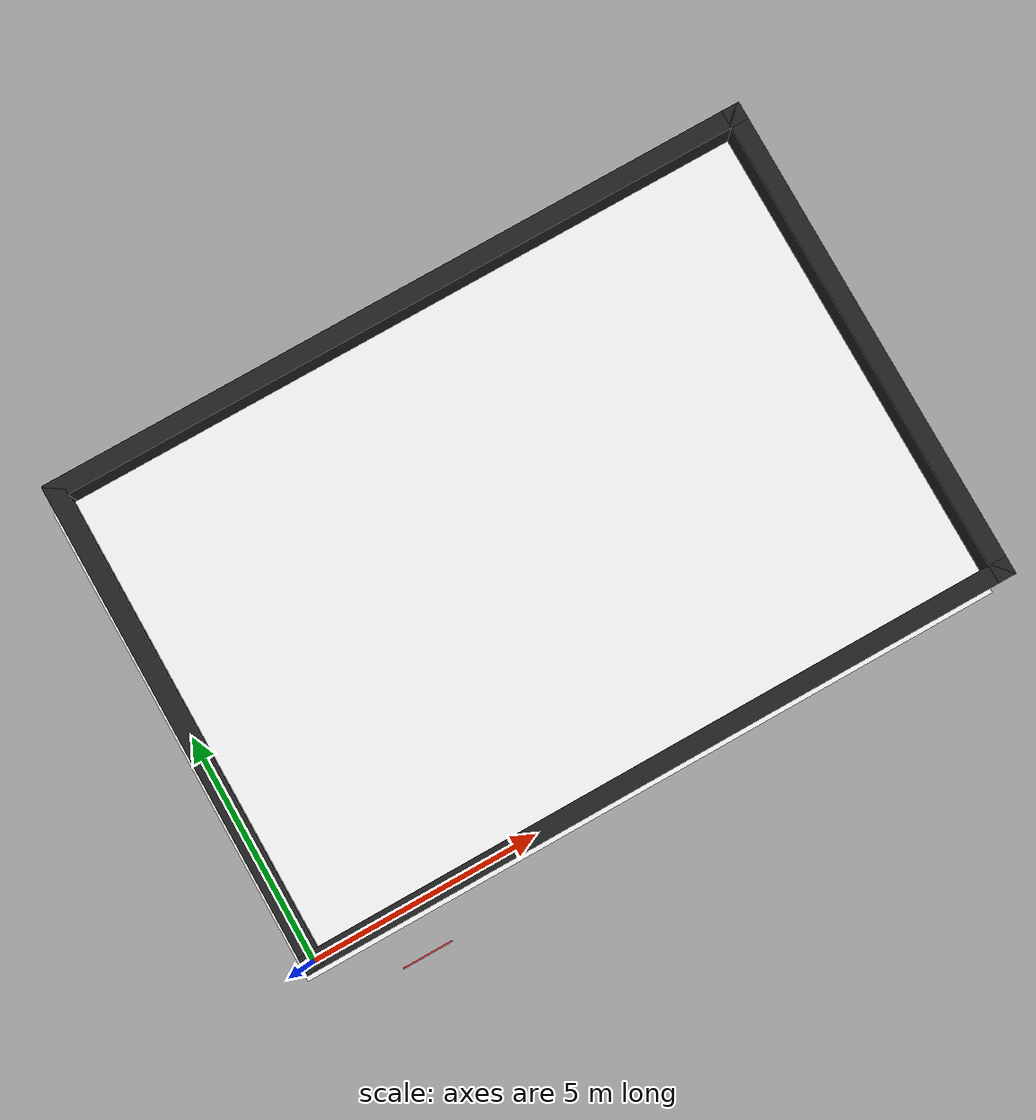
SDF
<sdf version="1.6">
 <world name="default">
  <light name="sun" type="directional">
   <pose>0.75 0.5 3 0 -0 0</pose>
   <diffuse>0.8 0.8 0.8 1</diffuse>
   <specular>0.2 0.2 0.2 1</specular>
   <attenuation>
    <range>1000</range>
    <constant>0.9</constant>
    <linear>0.01</linear>
    <quadratic>0.001</quadratic>
   </attenuation>
   <direction>-0.5 0.1 -0.9</direction>
  </light>
  <gravity>0 0 -9.8</gravity>
  <magnetic_field>6e-06 2.3e-05 -4.2e-05</magnetic_field>
  <atmosphere type="adiabatic"/>
  <physics name="default_physics" default="0" type="ode">
   <ode><solver><type>quick</type><iters>10</iters></solver></ode>
   <max_step_size>0.01</max_step_size>
   <real_time_factor>0.5</real_time_factor>
   <real_time_update_rate>100</real_time_update_rate>
  </physics>
  <scene>
   <ambient>0.7 0.7 0.7 1</ambient>
   <background>0.7 0.7 0.7 1</background>
   <shadows>0</shadows>
   <grid>false</grid>
  </scene>
  <spherical_coordinates>
   <surface_model>EARTH_WGS84</surface_model>
   <latitude_deg>0</latitude_deg>
   <longitude_deg>0</longitude_deg>
   <elevation>0</elevation>
   <heading_deg>0</heading_deg>
  </spherical_coordinates>
  <include><uri>model://mindstorm_map</uri><name>mindstorm_map</name></include>
  <plugin name="gazebo_links_state" filename="libgazebo_ros_state.so"/>
 </world>
</sdf>

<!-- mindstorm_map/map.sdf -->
<sdf version="1.4">
 <model name="mindstorm_map">
  <include>
   <uri>model://long_black_stripe</uri>
   <pose> 7.8 0.0 0 0 -0 0 </pose>
   <name>long_stripe_down</name>
  </include>
  <include>
   <uri>model://long_black_stripe</uri>
   <pose> 7.8 10.6 0 0 -0 0 </pose>
   <name>long_stripe_up</name>
  </include>
  <include>
   <uri>model://short_black_stripe</uri>
   <pose> 0.0 5.3 0 0 0 1.5707963268 </pose>
   <name>short_stripe_left</name>
  </include>
  <include>
   <uri>model://short_black_stripe</uri>
   <pose> 15.6 5.3 0 0 0 1.5707963268 </pose>
   <name>short_stripe_right</name>
  </include>
  <include>
   <uri>model://short_red_stripe</uri>
   <pose> 2.0 -1.0 0 0 0 0 </pose>
   <name>short_red_stripe</name>
  </include>
  <include>
   <uri>model://arena_ground</uri>
   <pose> 7.5 5.0 -0.05 0 -0 0 </pose>
   <name>arena_ground</name>
  </include>
 </model>
</sdf>

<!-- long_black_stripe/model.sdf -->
<sdf version='1.6'>
  <model name='long_black_stripe'>
    <static>true</static>
    <link name='link_0'>
      <pose frame=''>0 0 0 0 -0 0</pose>
      <inertial>
        <mass>1</mass>
        <inertia>
          <ixx>0.166667</ixx>
          <ixy>0</ixy>
          <ixz>0</ixz>
          <iyy>0.166667</iyy>
          <iyz>0</iyz>
          <izz>0.166667</izz>
        </inertia>
        <pose frame=''>0 0 0 0 -0 0</pose>
      </inertial>
      <gravity>1</gravity>
      <self_collide>0</self_collide>
      <kinematic>0</kinematic>
      <visual name='visual'>
        <pose frame=''>0 0 0 0 -0 0</pose>
        <geometry>
          <box>
            <size>16 0.4 1</size>
          </box>
        </geometry>
        <material>
          <lighting>1</lighting>
          <script>
            <uri>file://media/materials/scripts/gazebo.material</uri>
            <name>Gazebo/Black</name>
          </script>
          <shader type='vertex'>
            <normal_map>__default__</normal_map>
          </shader>
        </material>
        <cast_shadows>1</cast_shadows>
        <transparency>0</transparency>
      </visual>
      <collision name='collision'>
        <laser_retro>0</laser_retro>
        <max_contacts>10</max_contacts>
        <pose frame=''>0 0 0 0 -0 0</pose>
        <geometry>
          <box>
            <size>16 0.4 1</size>
          </box>
        </geometry>
        <surface>
          <friction>
            <ode>
              <mu>1</mu>
              <mu2>1</mu2>
              <fdir1>0 0 0</fdir1>
              <slip1>0</slip1>
              <slip2>0</slip2>
            </ode>
            <torsional>
              <coefficient>1</coefficient>
              <patch_radius>0</patch_radius>
              <surface_radius>0</surface_radius>
              <use_patch_radius>1</use_patch_radius>
              <ode>
                <slip>0</slip>
              </ode>
            </torsional>
          </friction>
          <bounce>
            <restitution_coefficient>0</restitution_coefficient>
            <threshold>1e+06</threshold>
          </bounce>
          <contact>
            <collide_without_contact>0</collide_without_contact>
            <collide_without_contact_bitmask>1</collide_without_contact_bitmask>
            <collide_bitmask>1</collide_bitmask>
            <ode>
              <soft_cfm>0</soft_cfm>
              <soft_erp>0.2</soft_erp>
              <kp>1e+13</kp>
              <kd>1</kd>
              <max_vel>0.01</max_vel>
              <min_depth>0</min_depth>
            </ode>
            <bullet>
              <split_impulse>1</split_impulse>
              <split_impulse_penetration_threshold>-0.01</split_impulse_penetration_threshold>
              <soft_cfm>0</soft_cfm>
              <soft_erp>0.2</soft_erp>
              <kp>1e+13</kp>
              <kd>1</kd>
            </bullet>
          </contact>
        </surface>
      </collision>
    </link>
    <static>0</static>
    <allow_auto_disable>1</allow_auto_disable>
  </model>
</sdf>

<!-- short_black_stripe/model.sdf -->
<sdf version='1.6'>
  <model name='short_black_stripe'>
    <static>true</static>
    <link name='link_0'>
      <pose frame=''>0 0 0 0 -0 0</pose>
      <inertial>
        <mass>1</mass>
        <inertia>
          <ixx>0.166667</ixx>
          <ixy>0</ixy>
          <ixz>0</ixz>
          <iyy>0.166667</iyy>
          <iyz>0</iyz>
          <izz>0.166667</izz>
        </inertia>
        <pose frame=''>0 0 0 0 -0 0</pose>
      </inertial>
      <gravity>1</gravity>
      <self_collide>0</self_collide>
      <kinematic>0</kinematic>
      <visual name='visual'>
        <pose frame=''>0 0 0 0 -0 0</pose>
        <geometry>
          <box>
            <size>11 0.4 1</size>
          </box>
        </geometry>
        <material>
          <lighting>1</lighting>
          <script>
            <uri>file://media/materials/scripts/gazebo.material</uri>
            <name>Gazebo/Black</name>
          </script>
          <shader type='vertex'>
            <normal_map>__default__</normal_map>
          </shader>
        </material>
        <cast_shadows>1</cast_shadows>
        <transparency>0</transparency>
      </visual>
      <collision name='collision'>
        <laser_retro>0</laser_retro>
        <max_contacts>10</max_contacts>
        <pose frame=''>0 0 0 0 -0 0</pose>
        <geometry>
          <box>
            <size>11.0 0.4 1</size>
          </box>
        </geometry>
        <surface>
          <friction>
            <ode>
              <mu>1</mu>
              <mu2>1</mu2>
              <fdir1>0 0 0</fdir1>
              <slip1>0</slip1>
              <slip2>0</slip2>
            </ode>
            <torsional>
              <coefficient>1</coefficient>
              <patch_radius>0</patch_radius>
              <surface_radius>0</surface_radius>
              <use_patch_radius>1</use_patch_radius>
              <ode>
                <slip>0</slip>
              </ode>
            </torsional>
          </friction>
          <bounce>
            <restitution_coefficient>0</restitution_coefficient>
            <threshold>1e+06</threshold>
          </bounce>
          <contact>
            <collide_without_contact>0</collide_without_contact>
            <collide_without_contact_bitmask>1</collide_without_contact_bitmask>
            <collide_bitmask>1</collide_bitmask>
            <ode>
              <soft_cfm>0</soft_cfm>
              <soft_erp>0.2</soft_erp>
              <kp>1e+13</kp>
              <kd>1</kd>
              <max_vel>0.01</max_vel>
              <min_depth>0</min_depth>
            </ode>
            <bullet>
              <split_impulse>1</split_impulse>
              <split_impulse_penetration_threshold>-0.01</split_impulse_penetration_threshold>
              <soft_cfm>0</soft_cfm>
              <soft_erp>0.2</soft_erp>
              <kp>1e+13</kp>
              <kd>1</kd>
            </bullet>
          </contact>
        </surface>
      </collision>
    </link>
    <static>0</static>
    <allow_auto_disable>1</allow_auto_disable>
  </model>
</sdf>

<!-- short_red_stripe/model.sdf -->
<sdf version='1.6'>
  <model name='short_red_stripe'>
    <static>true</static>
    <link name='link_0'>
      <pose frame=''>0 0 0 0 -0 0</pose>
      <inertial>
        <mass>1</mass>
        <inertia>
          <ixx>0.166667</ixx>
          <ixy>0</ixy>
          <ixz>0</ixz>
          <iyy>0.166667</iyy>
          <iyz>0</iyz>
          <izz>0.166667</izz>
        </inertia>
        <pose frame=''>0 0 0 0 -0 0</pose>
      </inertial>
      <gravity>1</gravity>
      <self_collide>0</self_collide>
      <kinematic>0</kinematic>
      <visual name='visual'>
        <pose frame=''>0 0 0 0 -0 0</pose>
        <geometry>
          <box>
            <size>1.1 0.03 0.002</size>
          </box>
        </geometry>
        <material>
          <lighting>1</lighting>
          <script>
            <uri>file://media/materials/scripts/gazebo.material</uri>
            <name>Gazebo/Red</name>
          </script>
          <shader type='vertex'>
            <normal_map>__default__</normal_map>
          </shader>
        </material>
        <cast_shadows>0</cast_shadows>
        <transparency>0</transparency>
      </visual>
    </link>
    <static>0</static>
    <allow_auto_disable>1</allow_auto_disable>
  </model>
</sdf>

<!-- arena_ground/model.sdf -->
<sdf version='1.6'>
  <model name='arena_ground'>
    <static>true</static>
    <link name='link_0'>
      <pose frame=''>-0 -0 -0 0 -0 0</pose>
      <inertial>
        <mass>1</mass>
        <inertia>
          <ixx>0.166667</ixx>
          <ixy>0</ixy>
          <ixz>0</ixz>
          <iyy>0.166667</iyy>
          <iyz>0</iyz>
          <izz>0.166667</izz>
        </inertia>
        <pose frame=''>0 0 0 0 -0 0</pose>
      </inertial>
      <gravity>1</gravity>
      <self_collide>0</self_collide>
      <kinematic>0</kinematic>
      <visual name='visual'>
        <pose frame=''>0 0 0 0 -0 0</pose>
        <geometry>
          <box>
            <size>15.6 10.6 0.1</size>
          </box>
        </geometry>

        <material>
          <script>
            <uri>file://media/materials/scripts/gazebo.material</uri>
            <name>Gazebo/White</name>
          </script>
        </material>

        <cast_shadows>1</cast_shadows>
        <transparency>0</transparency>
      </visual>
      <collision name='collision'>
        <laser_retro>0</laser_retro>
        <max_contacts>10</max_contacts>
        <pose frame=''>0 0 0 0 -0 0</pose>
        <geometry>
          <box>
            <size>25 25 0.1</size>
          </box>
        </geometry>
        <surface>
          <friction>
            <ode>
              <mu>1</mu>
              <mu2>1</mu2>
              <fdir1>0 0 0</fdir1>
              <slip1>0</slip1>
              <slip2>0</slip2>
            </ode>
            <torsional>
              <coefficient>1</coefficient>
              <patch_radius>0</patch_radius>
              <surface_radius>0</surface_radius>
              <use_patch_radius>1</use_patch_radius>
              <ode>
                <slip>0</slip>
              </ode>
            </torsional>
          </friction>
          <bounce>
            <restitution_coefficient>0</restitution_coefficient>
            <threshold>1e+06</threshold>
          </bounce>
          <contact>
            <collide_without_contact>0</collide_without_contact>
            <collide_without_contact_bitmask>1</collide_without_contact_bitmask>
            <collide_bitmask>1</collide_bitmask>
            <ode>
              <soft_cfm>0</soft_cfm>
              <soft_erp>0.2</soft_erp>
              <kp>1e+13</kp>
              <kd>1</kd>
              <max_vel>0.01</max_vel>
              <min_depth>0</min_depth>
            </ode>
            <bullet>
              <split_impulse>1</split_impulse>
              <split_impulse_penetration_threshold>-0.01</split_impulse_penetration_threshold>
              <soft_cfm>0</soft_cfm>
              <soft_erp>0.2</soft_erp>
              <kp>1e+13</kp>
              <kd>1</kd>
            </bullet>
          </contact>
        </surface>
      </collision>
    </link>
    <static>0</static>
    <allow_auto_disable>1</allow_auto_disable>
  </model>
</sdf>
